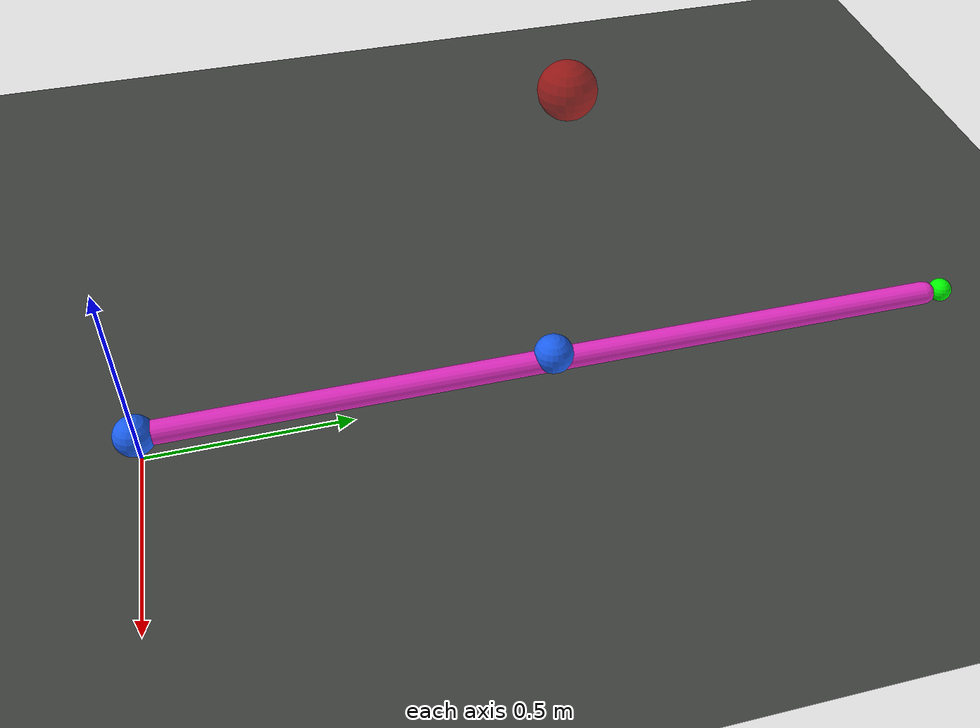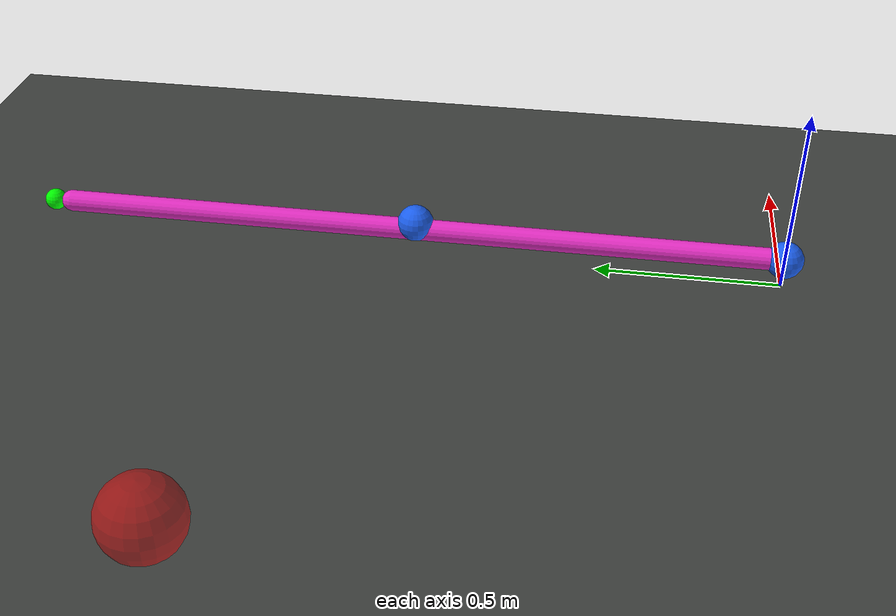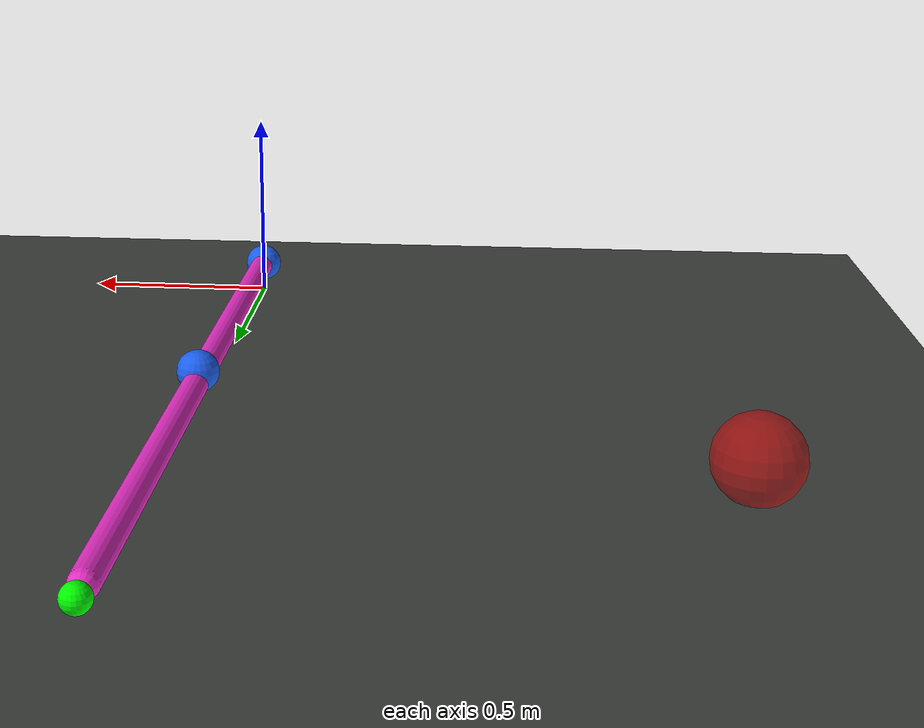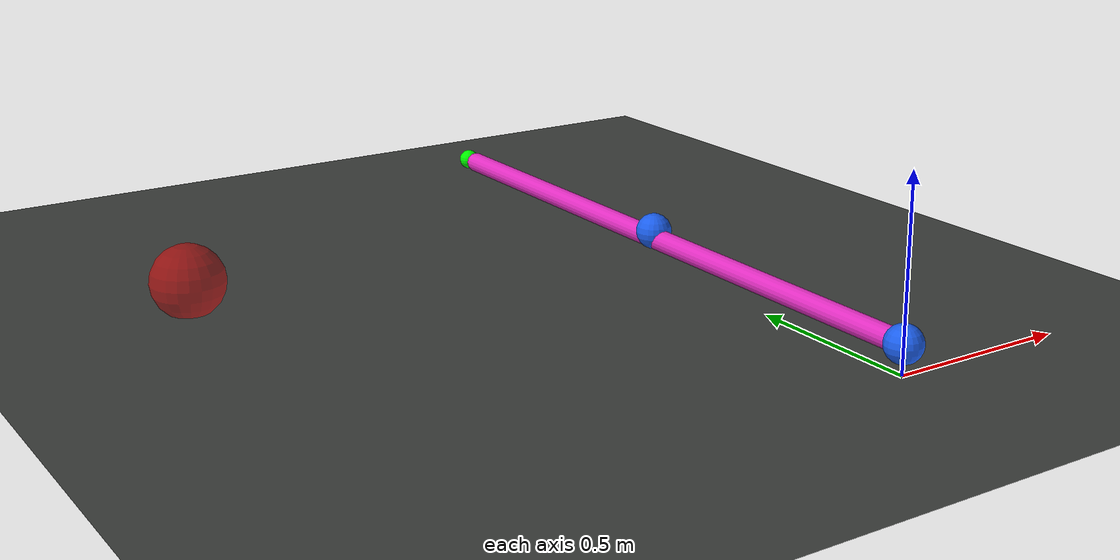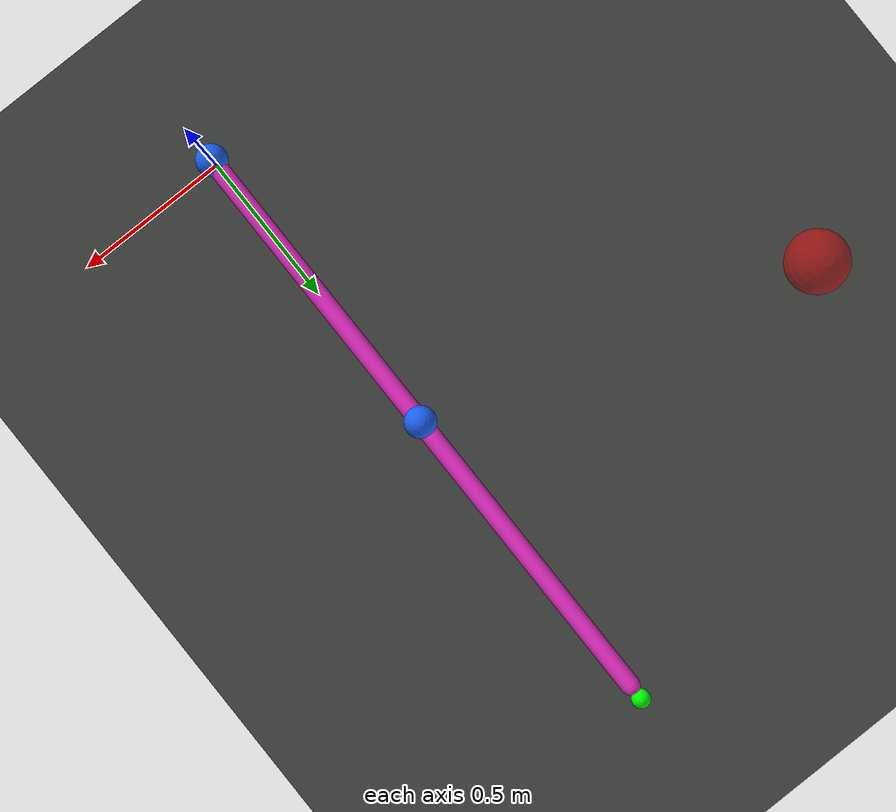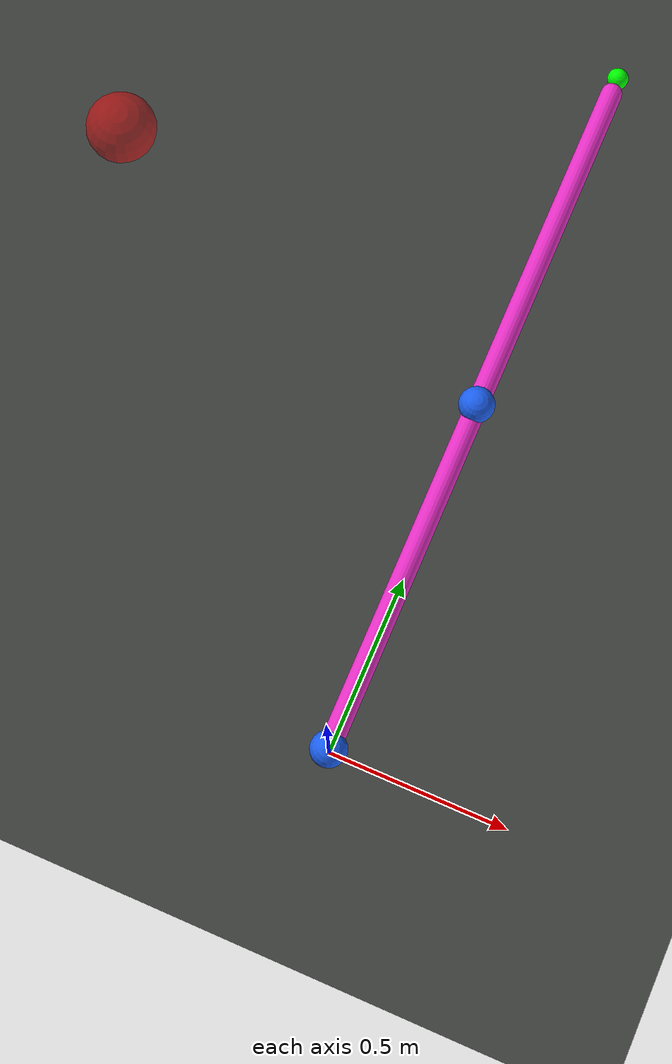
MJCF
<?xml version="1.0" encoding="utf-8"?>
<mujoco>
	<compiler angle="radian" coordinate="local" inertiafromgeom="true"></compiler>
	<option timestep="0.002">
		<flag warmstart="enable"></flag>
	</option>

	<default>
		<joint limited="true" damping="3" stiffness="0" armature=".1" user="0"/>
		<geom solref="0.008 1" solimp="0.95 0.95 0.01" margin="0.001" user="0"/>
		<position ctrllimited="true"/>

		<default class='0'>
			<geom friction="1 0.005 0.001" rgba=".75 .6 .5 1" contype="1" conaffinity="0"/>
		</default>

	</default>

	<worldbody>
		<light directional="true" ambient="0.2 0.2 0.2" diffuse="0.8 0.8 0.8" specular="0.3 0.3 0.3" castshadow="false" pos="0 0 4" dir="0 0 -1" name="light0"></light>

		<geom name="ground" type="plane" pos="0 0 0" size="3 5 0.001" rgba=" .25 .26 .25 1"/>
		<body name="ground" pos="0 0 0">
			<site name="goal" type="sphere" size="0.1" pos="-1.223 1.36346 0.08" rgba="1 0 0 0.5"/>
		</body>
		<camera name="upper_camera" pos="0 0 6" />
		<body pos="0 0 0">
			<inertial diaginertia="0.2725 0.2725 0.2725" mass="3" pos="0 0 0"></inertial>
			<joint name="joint_1" type="hinge" axis="0 0 1" pos="0 0 0" limited="true" range="-3 3"/>
			<geom name="shoulder" type="capsule" size="0.03" fromto="0 0 0.08 0 1 0.08" rgba="0.91 0.18 0.78 1"/>
			<site name="connection_site_1" type="sphere" size="0.05" pos="0 0 0.08" rgba="0.11 0.38 0.95 0.9"/>

			<body pos="0 0 0.08">
				<inertial diaginertia="0.2725 0.2725 0.2725" mass="3" pos="0 0 0"></inertial>
				<geom name="elbow" type="capsule" size="0.03" fromto="0 1 0 0 2 0" rgba="0.91 0.18 0.78 1"/>
				<site name="connection_site_2" type="sphere" size="0.05" pos="0 1 0.02" rgba="0.11 0.38 0.95 0.9"/>
				<joint name="joint_2" type="hinge" axis="0 0 1" pos="0 1 0" limited="true" range="-3 3"/>
				<site name="end_site" type="sphere" size="0.03" pos="0 2.05 0" rgba="0 1 0 1"/>
			</body>
		</body>
	</worldbody>

	<actuator>
        <motor joint='joint_1' name='motor_1' ctrlrange="-5 5"/>
        <motor joint='joint_2' name='motor_2' ctrlrange="-5 5"/>
	</actuator>

</mujoco>
